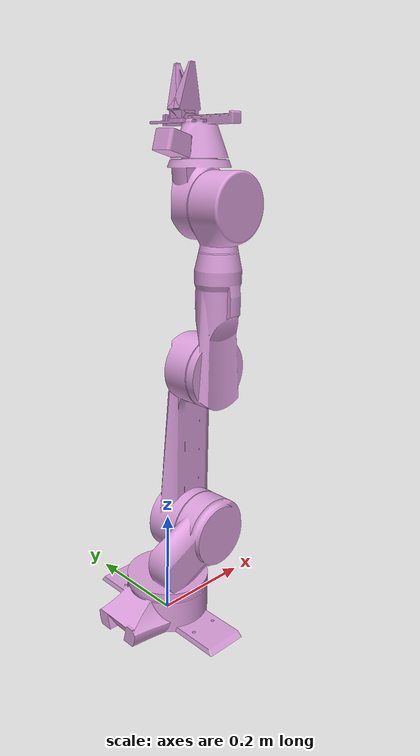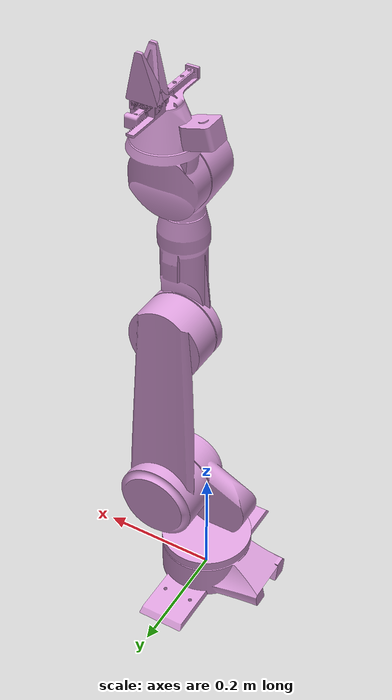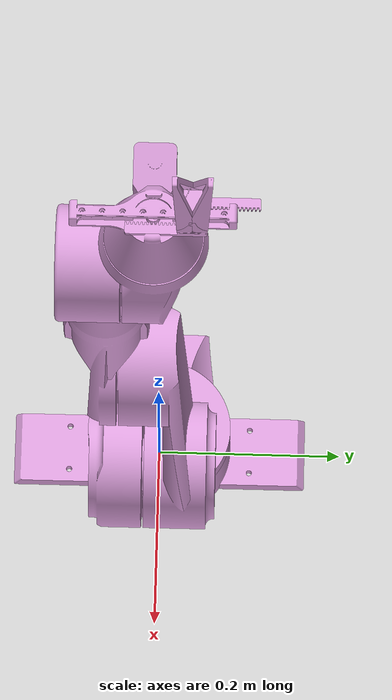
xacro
<?xml version="1.0"?>
<robot xmlns:xacro="http://www.ros.org/wiki/xacro" name="a750-rev1">
    <xacro:arg name="initial_positions_file" default="initial_positions.yaml" />

    <!-- Import a750-rev1 urdf file -->
    <xacro:include filename="$(find a750_description)/urdf/a750_rev1.urdf" />

    <!-- Import control_xacro -->
    <xacro:include filename="a750-rev1.ros2_control.xacro" />

    <xacro:a750-rev1_ros2_control name="FakeSystem" initial_positions_file="$(arg initial_positions_file)"/>

</robot>

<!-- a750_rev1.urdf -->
<robot name="a750-rev1">
  <link name="base_link">
    <visual>
      <geometry>
        <mesh filename="package://a750_description/meshes/a750_rev1/base.stl" scale="0.001 0.001 0.001"/>
      </geometry>
      <material name="Plum">
        <color rgba="0.86666667 0.62745098 0.86666667 1.        "/>
      </material>
      <origin xyz="0.0 0.0 0.0" rpy="0.0 -0.0 0.0"/>
    </visual>
    <collision>
      <geometry>
        <mesh filename="package://a750_description/meshes/a750_rev1/collision_base.stl" scale="0.001 0.001 0.001"/>
      </geometry>
      <origin xyz="0.0 0.0 0.0" rpy="0.0 -0.0 0.0"/>
    </collision>
  </link>
  <link name="link1">
    <inertial>
      <origin xyz="0.0748068390116358 0.024761244214673732 0.04872059619684632" rpy="0.0 -0.0 0.0"/>
      <mass value="0.8585205200761918"/>
      <inertia ixx="0.002419944779833706" ixy="-0.00025620403935700914" ixz="-0.0007185550375820911" iyy="0.0025217135714171476" iyz="1.0831857032229891e-05" izz="0.002019731410894806"/>
    </inertial>
    <visual>
      <geometry>
        <mesh filename="package://a750_description/meshes/a750_rev1/link1.stl" scale="0.001 0.001 0.001"/>
      </geometry>
      <material name="Plum">
        <color rgba="0.86666667 0.62745098 0.86666667 1.        "/>
      </material>
      <origin xyz="0.0 0.0 0.0" rpy="0.0 -0.0 0.0"/>
    </visual>
    <collision>
      <geometry>
        <mesh filename="package://a750_description/meshes/a750_rev1/collision_link1.stl" scale="0.001 0.001 0.001"/>
      </geometry>
      <origin xyz="0.0 0.0 0.0" rpy="0.0 -0.0 0.0"/>
    </collision>
  </link>
  <link name="link2">
    <inertial>
      <origin xyz="-0.003737654142209511 0.00011959907091841275 0.22199346018509772" rpy="0.0 -0.0 0.0"/>
      <mass value="0.855634866219948"/>
      <inertia ixx="0.01458748867806837" ixy="0.00033903149286754886" ixz="0.0019312859701743755" iyy="0.014649276330077753" iyz="-0.0003358211867203507" izz="0.0017021580949314991"/>
    </inertial>
    <visual>
      <geometry>
        <mesh filename="package://a750_description/meshes/a750_rev1/link2.stl" scale="0.001 0.001 0.001"/>
      </geometry>
      <material name="Plum">
        <color rgba="0.86666667 0.62745098 0.86666667 1.        "/>
      </material>
      <origin xyz="0.0 0.0 0.0" rpy="0.0 -0.0 0.0"/>
    </visual>
    <collision>
      <geometry>
        <mesh filename="package://a750_description/meshes/a750_rev1/collision_link2.stl" scale="0.001 0.001 0.001"/>
      </geometry>
      <origin xyz="0.0 0.0 0.0" rpy="0.0 -0.0 0.0"/>
    </collision>
  </link>
  <link name="link3">
    <inertial>
      <origin xyz="0.00526857176860878 -3.438398073658552e-05 0.10998127695756842" rpy="0.0 -0.0 0.0"/>
      <mass value="0.5577548514954243"/>
      <inertia ixx="0.0020517566400693786" ixy="-4.1065037517520815e-06" ixz="5.929205307890755e-05" iyy="0.0021906181498202236" iyz="3.511011400287938e-05" izz="0.00046868381046310105"/>
    </inertial>
    <visual>
      <geometry>
        <mesh filename="package://a750_description/meshes/a750_rev1/link3.stl" scale="0.001 0.001 0.001"/>
      </geometry>
      <material name="Plum">
        <color rgba="0.86666667 0.62745098 0.86666667 1.        "/>
      </material>
      <origin xyz="0.0 0.0 0.0" rpy="0.0 -0.0 0.0"/>
    </visual>
    <collision>
      <geometry>
        <mesh filename="package://a750_description/meshes/a750_rev1/collision_link3.stl" scale="0.001 0.001 0.001"/>
      </geometry>
      <origin xyz="0.0 0.0 0.0" rpy="0.0 -0.0 0.0"/>
    </collision>
  </link>
  <link name="link4">
    <inertial>
      <origin xyz="0.11376093940867599 -0.006242669379489227 6.7607662151912055e-06" rpy="0.0 -0.0 0.0"/>
      <mass value="0.5053526719021317"/>
      <inertia ixx="0.00039686335426533393" ixy="6.642460976789327e-05" ixz="4.3119267930742596e-07" iyy="0.0007610868358860259" iyz="-2.194494539609229e-07" izz="0.0007829643392806407"/>
    </inertial>
    <visual>
      <geometry>
        <mesh filename="package://a750_description/meshes/a750_rev1/link4.stl" scale="0.001 0.001 0.001"/>
      </geometry>
      <material name="Plum">
        <color rgba="0.86666667 0.62745098 0.86666667 1.        "/>
      </material>
      <origin xyz="0.0 0.0 0.0" rpy="0.0 -0.0 0.0"/>
    </visual>
    <collision>
      <geometry>
        <mesh filename="package://a750_description/meshes/a750_rev1/collision_link4.stl" scale="0.001 0.001 0.001"/>
      </geometry>
      <origin xyz="0.0 0.0 0.0" rpy="0.0 -0.0 0.0"/>
    </collision>
  </link>
  <link name="link5">
    <inertial>
      <origin xyz="0.02705240410961678 0.00019068487026750958 0.034063810747173386" rpy="0.0 -0.0 0.0"/>
      <mass value="0.42503045095273195"/>
      <inertia ixx="0.0003539794788913735" ixy="-1.468932681852184e-07" ixz="-2.1697838711775726e-05" iyy="0.00040767808098635117" iyz="-1.1681166888734056e-06" izz="0.000440945447797824"/>
    </inertial>
    <visual>
      <geometry>
        <mesh filename="package://a750_description/meshes/a750_rev1/link5.stl" scale="0.001 0.001 0.001"/>
      </geometry>
      <material name="Plum">
        <color rgba="0.86666667 0.62745098 0.86666667 1.        "/>
      </material>
      <origin xyz="0.0 0.0 0.0" rpy="0.0 -0.0 0.0"/>
    </visual>
    <collision>
      <geometry>
        <mesh filename="package://a750_description/meshes/a750_rev1/collision_link5.stl" scale="0.001 0.001 0.001"/>
      </geometry>
      <origin xyz="0.0 0.0 0.0" rpy="0.0 -0.0 0.0"/>
    </collision>
  </link>
  <link name="link6">
    <inertial>
      <origin xyz="0.044726775095202016 -1.5461357918461755e-05 0.003966103054433393" rpy="0.0 -0.0 0.0"/>
      <mass value="0.4767489831533607"/>
      <inertia ixx="0.00045339245045896776" ixy="-2.9138455468778536e-07" ixz="1.4904439883949934e-05" iyy="0.00040763480431961214" iyz="-8.924300353291685e-08" izz="0.00043284190432218755"/>
    </inertial>
    <visual>
      <geometry>
        <mesh filename="package://a750_description/meshes/a750_rev1/link6.stl" scale="0.001 0.001 0.001"/>
      </geometry>
      <material name="Plum">
        <color rgba="0.86666667 0.62745098 0.86666667 1.        "/>
      </material>
      <origin xyz="0.0 0.0 0.0" rpy="0.0 -0.0 0.0"/>
    </visual>
    <collision>
      <geometry>
        <mesh filename="package://a750_description/meshes/a750_rev1/collision_link6.stl" scale="0.001 0.001 0.001"/>
      </geometry>
      <origin xyz="0.0 0.0 0.0" rpy="0.0 -0.0 0.0"/>
    </collision>
  </link>
  <link name="gripper_base"/>
  <link name="left_finger_link">
    <inertial>
      <origin xyz="-0.005434852020996829 -0.000981381913833553 0.020302424537325902" rpy="0.0 -0.0 0.0"/>
      <mass value="0.04432657029800724"/>
      <inertia ixx="2.4894812683572916e-05" ixy="-8.157578758324332e-07" ixz="3.1782998967651784e-06" iyy="2.61760843227401e-05" iyz="-9.904381702521315e-07" izz="1.2284988533997069e-05"/>
    </inertial>
    <visual>
      <geometry>
        <mesh filename="package://a750_description/meshes/a750_rev1/finger.stl" scale="0.001 0.001 0.001"/>
      </geometry>
      <material name="Plum">
        <color rgba="0.86666667 0.62745098 0.86666667 1.        "/>
      </material>
      <origin xyz="0.0 0.0 0.0" rpy="0.0 -0.0 0.0"/>
    </visual>
    <collision>
      <geometry>
        <mesh filename="package://a750_description/meshes/a750_rev1/collision_finger.stl" scale="0.001 0.001 0.001"/>
      </geometry>
      <origin xyz="0.0 0.0 0.0" rpy="0.0 -0.0 0.0"/>
    </collision>
  </link>
  <link name="right_finger_link">
    <inertial>
      <origin xyz="-0.005434852020996829 -0.000981381913833553 0.020302424537325902" rpy="0.0 -0.0 0.0"/>
      <mass value="0.04432657029800724"/>
      <inertia ixx="2.4894812683572916e-05" ixy="-8.157578758324332e-07" ixz="3.1782998967651784e-06" iyy="2.61760843227401e-05" iyz="-9.904381702521315e-07" izz="1.2284988533997069e-05"/>
    </inertial>
    <visual>
      <geometry>
        <mesh filename="package://a750_description/meshes/a750_rev1/finger.stl" scale="0.001 0.001 0.001"/>
      </geometry>
      <material name="Plum">
        <color rgba="0.86666667 0.62745098 0.86666667 1.        "/>
      </material>
      <origin xyz="0.0 0.0 0.0" rpy="0.0 0.0 3.141592653589793"/>
    </visual>
    <collision>
      <geometry>
        <mesh filename="package://a750_description/meshes/a750_rev1/collision_finger.stl" scale="0.001 0.001 0.001"/>
      </geometry>
      <origin xyz="0.0 0.0 0.0" rpy="0.0 0.0 3.141592653589793"/>
    </collision>
  </link>
  <joint name="joint1" type="revolute">
    <limit effort="100.0" velocity="3.141592653589793" lower="-3.097959422289935" upper="3.097959422289935"/>
    <parent link="base_link"/>
    <child link="link1"/>
    <axis xyz="1. 0. 0."/>
    <origin xyz="0.0 0.0 0.06520000000000001" rpy="-3.141592653589793 -1.5707963267948966 0.0"/>
  </joint>
  <joint name="joint2" type="revolute">
    <limit effort="100.0" velocity="3.4033920413889427" lower="-1.5707963267948966" upper="2.0943951023931953"/>
    <parent link="link1"/>
    <child link="link2"/>
    <axis xyz="1. 0. 0."/>
    <origin xyz="0.0978 -0.005 0.07050000000000001" rpy="-1.5707963267948966 -0.0 -1.5707963267948966"/>
  </joint>
  <joint name="joint3" type="revolute">
    <limit effort="100.0" velocity="3.141592653589793" lower="-2.705260340591211" upper="2.705260340591211"/>
    <parent link="link2"/>
    <child link="link3"/>
    <axis xyz="1. 0. 0."/>
    <origin xyz="-0.0505 0.0 0.322" rpy="0.0 -0.0 3.141592653589793"/>
  </joint>
  <joint name="joint4" type="revolute">
    <limit effort="100.0" velocity="3.9269908169872414" lower="-3.0543261909900767" upper="3.0543261909900767"/>
    <parent link="link3"/>
    <child link="link4"/>
    <axis xyz="1. 0. 0."/>
    <origin xyz="0.0043 0.0 0.166" rpy="1.5707963267948966 -1.5707963267948966 0.0"/>
  </joint>
  <joint name="joint5" type="revolute">
    <limit effort="100.0" velocity="3.9269908169872414" lower="-2.0943951023931953" upper="2.0943951023931953"/>
    <parent link="link4"/>
    <child link="link5"/>
    <axis xyz="1. 0. 0."/>
    <origin xyz="0.1275 0.020800000000000003 0.0" rpy="1.5707963267948966 -0.0 1.5707963267948966"/>
  </joint>
  <joint name="joint6" type="revolute">
    <limit effort="100.0" velocity="3.9269908169872414" lower="-3.141592653589793" upper="3.141592653589793"/>
    <parent link="link5"/>
    <child link="link6"/>
    <axis xyz="1. 0. 0."/>
    <origin xyz="0.029 0.0 0.064" rpy="-1.5707963267948966 -1.5707963267948966 0.0"/>
  </joint>
  <joint name="wrist_to_gripper" type="fixed">
    <parent link="link6"/>
    <child link="gripper_base"/>
    <axis xyz="1. 0. 0."/>
    <origin xyz="0.076 0.0 0.0" rpy="1.5707963267948966 -0.0 1.5707963267948966"/>
  </joint>
  <joint name="finger" type="prismatic">
    <limit effort="100.0" velocity="255.0" lower="0.018" upper="0.06"/>
    <parent link="gripper_base"/>
    <child link="left_finger_link"/>
    <axis xyz="1. 0. 0."/>
    <origin xyz="0.0 0.0 0.0" rpy="0.0 -0.0 0.0"/>
  </joint>
  <joint name="finger_mimic" type="prismatic">
    <limit effort="100.0" velocity="255.0" lower="0.018" upper="0.06"/>
    <mimic joint="finger" multiplier="-1.0" offset="0.0"/>
    <parent link="gripper_base"/>
    <child link="right_finger_link"/>
    <axis xyz="1. 0. 0."/>
    <origin xyz="0.0 0.0 0.0" rpy="0.0 -0.0 0.0"/>
  </joint>
  <ros2_control name="A750System" type="system">
    <hardware>
      <plugin>$(arg plugin)</plugin>
      <param name="use_fake_hardware">$(arg use_fake_hardware)</param>
      <param name="device_path">$(arg device_path)</param>
    </hardware>
    <joint name="joint1">
      <command_interface name="position"/>
      <command_interface name="velocity"/>
      <command_interface name="effort"/>
      <state_interface name="position"/>
      <state_interface name="velocity"/>
      <state_interface name="effort"/>
    </joint>
    <joint name="joint2">
      <command_interface name="position"/>
      <command_interface name="velocity"/>
      <command_interface name="effort"/>
      <state_interface name="position"/>
      <state_interface name="velocity"/>
      <state_interface name="effort"/>
    </joint>
    <joint name="joint3">
      <command_interface name="position"/>
      <command_interface name="velocity"/>
      <command_interface name="effort"/>
      <state_interface name="position"/>
      <state_interface name="velocity"/>
      <state_interface name="effort"/>
    </joint>
    <joint name="joint4">
      <command_interface name="position"/>
      <command_interface name="velocity"/>
      <command_interface name="effort"/>
      <state_interface name="position"/>
      <state_interface name="velocity"/>
      <state_interface name="effort"/>
    </joint>
    <joint name="joint5">
      <command_interface name="position"/>
      <command_interface name="velocity"/>
      <command_interface name="effort"/>
      <state_interface name="position"/>
      <state_interface name="velocity"/>
      <state_interface name="effort"/>
    </joint>
    <joint name="joint6">
      <command_interface name="position"/>
      <command_interface name="velocity"/>
      <command_interface name="effort"/>
      <state_interface name="position"/>
      <state_interface name="velocity"/>
      <state_interface name="effort"/>
    </joint>
    <joint name="finger">
      <command_interface name="position"/>
      <command_interface name="velocity"/>
      <command_interface name="effort"/>
      <state_interface name="position"/>
      <state_interface name="velocity"/>
      <state_interface name="effort"/>
    </joint>
  </ros2_control>
</robot>
